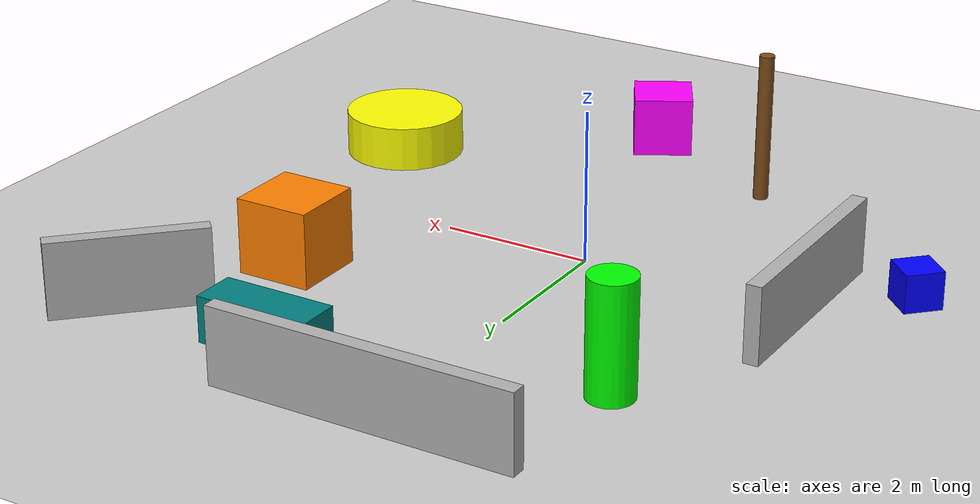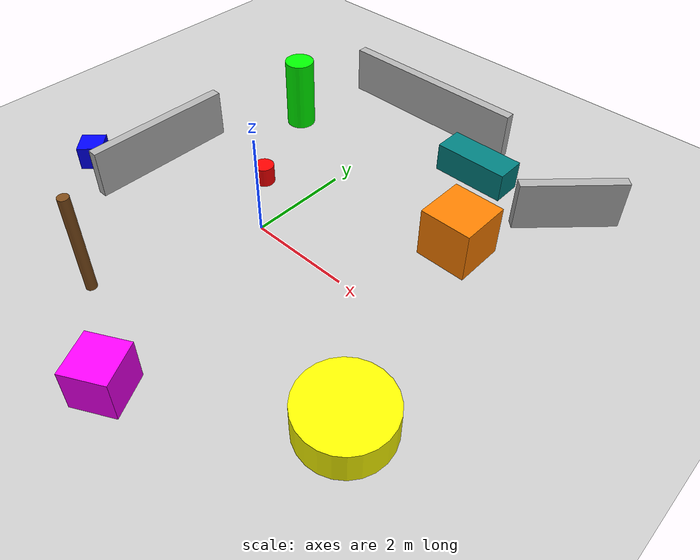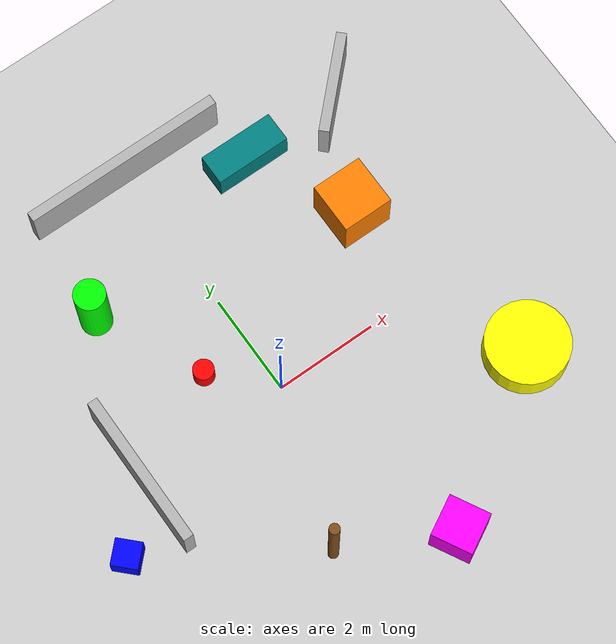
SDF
<?xml version="1.0" ?>
<sdf version="1.5">
  <world name="custom_obstacle_world">

    <physics type="ode">
      <max_step_size>0.001</max_step_size>
      <real_time_factor>1</real_time_factor>
      <real_time_update_rate>1000</real_time_update_rate>
    </physics>

    <!-- Sun -->
    <light type="directional" name="sun">
      <cast_shadows>true</cast_shadows>
      <pose>0 0 10 0 0 0</pose>
      <diffuse>0.8 0.8 0.8 1</diffuse>
      <specular>0.2 0.2 0.2 1</specular>
      <attenuation>
        <range>1000</range>
        <constant>0.9</constant>
        <linear>0.01</linear>
        <quadratic>0.001</quadratic>
      </attenuation>
      <direction>-0.5 0.1 -0.9</direction>
    </light>

    <!-- Ground plane -->
    <model name="ground_plane">
      <static>true</static>
      <link name="link">
        <collision name="collision">
          <geometry>
            <plane>
              <normal>0 0 1</normal>
              <size>100 100</size>
            </plane>
          </geometry>
        </collision>
        <visual name="visual">
          <geometry>
            <plane>
              <normal>0 0 1</normal>
              <size>100 100</size>
            </plane>
          </geometry>
          <material>
            <ambient>0.8 0.8 0.8 1</ambient>
            <diffuse>0.8 0.8 0.8 1</diffuse>
            <specular>0.8 0.8 0.8 1</specular>
          </material>
        </visual>
      </link>
    </model>

    <!-- Box Obstacle 1 -->
    <model name="box_obstacle_1">
      <pose>3 2 0.5 0 0 0</pose>
      <static>true</static>
      <link name="link">
        <collision name="collision">
          <geometry>
            <box>
              <size>1 1 1</size>
            </box>
          </geometry>
        </collision>
        <visual name="visual">
          <geometry>
            <box>
              <size>1 1 1</size>
            </box>
          </geometry>
          <material>
            <ambient>1 0.5 0 1</ambient>
            <diffuse>1 0.5 0 1</diffuse>
          </material>
        </visual>
      </link>
    </model>

    <!-- Cylinder Obstacle 1 -->
    <model name="cylinder_obstacle_1">
      <pose>-2 3 0.75 0 0 0</pose>
      <static>true</static>
      <link name="link">
        <collision name="collision">
          <geometry>
            <cylinder>
              <radius>0.3</radius>
              <length>1.5</length>
            </cylinder>
          </geometry>
        </collision>
        <visual name="visual">
          <geometry>
            <cylinder>
              <radius>0.3</radius>
              <length>1.5</length>
            </cylinder>
          </geometry>
          <material>
            <ambient>0 1 0 1</ambient>
            <diffuse>0 1 0 1</diffuse>
          </material>
        </visual>
      </link>
    </model>

    <!-- Wall 1 -->
    <model name="wall_1">
      <pose>0 5 0.5 0 0 0</pose>
      <static>true</static>
      <link name="link">
        <collision name="collision">
          <geometry>
            <box>
              <size>4 0.2 1</size>
            </box>
          </geometry>
        </collision>
        <visual name="visual">
          <geometry>
            <box>
              <size>4 0.2 1</size>
            </box>
          </geometry>
          <material>
            <ambient>0.7 0.7 0.7 1</ambient>
            <diffuse>0.7 0.7 0.7 1</diffuse>
          </material>
        </visual>
      </link>
    </model>

    <!-- Small Box -->
    <model name="box_obstacle_2">
      <pose>-4 -1 0.25 0 0 0.785</pose>
      <static>true</static>
      <link name="link">
        <collision name="collision">
          <geometry>
            <box>
              <size>0.5 0.5 0.5</size>
            </box>
          </geometry>
        </collision>
        <visual name="visual">
          <geometry>
            <box>
              <size>0.5 0.5 0.5</size>
            </box>
          </geometry>
          <material>
            <ambient>0 0 1 1</ambient>
            <diffuse>0 0 1 1</diffuse>
          </material>
        </visual>
      </link>
    </model>

    <!-- Wide Cylinder -->
    <model name="cylinder_obstacle_2">
      <pose>4 -2 0.3 0 0 0</pose>
      <static>true</static>
      <link name="link">
        <collision name="collision">
          <geometry>
            <cylinder>
              <radius>0.8</radius>
              <length>0.6</length>
            </cylinder>
          </geometry>
        </collision>
        <visual name="visual">
          <geometry>
            <cylinder>
              <radius>0.8</radius>
              <length>0.6</length>
            </cylinder>
          </geometry>
          <material>
            <ambient>1 1 0 1</ambient>
            <diffuse>1 1 0 1</diffuse>
          </material>
        </visual>
      </link>
    </model>

    <!-- Wall 2 -->
    <model name="wall_2">
      <pose>-3 0 0.5 0 0 1.57</pose>
      <static>true</static>
      <link name="link">
        <collision name="collision">
          <geometry>
            <box>
              <size>3 0.2 1</size>
            </box>
          </geometry>
        </collision>
        <visual name="visual">
          <geometry>
            <box>
              <size>3 0.2 1</size>
            </box>
          </geometry>
          <material>
            <ambient>0.7 0.7 0.7 1</ambient>
            <diffuse>0.7 0.7 0.7 1</diffuse>
          </material>
        </visual>
      </link>
    </model>

    <!-- Box Obstacle 3 -->
    <model name="box_obstacle_3">
      <pose>1 -4 0.4 0 0 0.5</pose>
      <static>true</static>
      <link name="link">
        <collision name="collision">
          <geometry>
            <box>
              <size>0.8 0.8 0.8</size>
            </box>
          </geometry>
        </collision>
        <visual name="visual">
          <geometry>
            <box>
              <size>0.8 0.8 0.8</size>
            </box>
          </geometry>
          <material>
            <ambient>1 0 1 1</ambient>
            <diffuse>1 0 1 1</diffuse>
          </material>
        </visual>
      </link>
    </model>

    <!-- Thin Cylinder Pole -->
    <model name="pole_1">
      <pose>-1 -3 1 0 0 0</pose>
      <static>true</static>
      <link name="link">
        <collision name="collision">
          <geometry>
            <cylinder>
              <radius>0.1</radius>
              <length>2</length>
            </cylinder>
          </geometry>
        </collision>
        <visual name="visual">
          <geometry>
            <cylinder>
              <radius>0.1</radius>
              <length>2</length>
            </cylinder>
          </geometry>
          <material>
            <ambient>0.5 0.3 0.1 1</ambient>
            <diffuse>0.5 0.3 0.1 1</diffuse>
          </material>
        </visual>
      </link>
    </model>

    <!-- Rectangular Block -->
    <model name="rect_obstacle_1">
      <pose>2 4 0.3 0 0 0</pose>
      <static>true</static>
      <link name="link">
        <collision name="collision">
          <geometry>
            <box>
              <size>1.5 0.6 0.6</size>
            </box>
          </geometry>
        </collision>
        <visual name="visual">
          <geometry>
            <box>
              <size>1.5 0.6 0.6</size>
            </box>
          </geometry>
          <material>
            <ambient>0 0.5 0.5 1</ambient>
            <diffuse>0 0.5 0.5 1</diffuse>
          </material>
        </visual>
      </link>
    </model>

    <!-- Corner Wall -->
    <model name="corner_wall">
      <pose>4 4 0.5 0 0 0.785</pose>
      <static>true</static>
      <link name="link">
        <collision name="collision">
          <geometry>
            <box>
              <size>2 0.2 1</size>
            </box>
          </geometry>
        </collision>
        <visual name="visual">
          <geometry>
            <box>
              <size>2 0.2 1</size>
            </box>
          </geometry>
          <material>
            <ambient>0.7 0.7 0.7 1</ambient>
            <diffuse>0.7 0.7 0.7 1</diffuse>
          </material>
        </visual>
      </link>
    </model>

    <!-- Small Cylinder -->
    <model name="small_cylinder">
      <pose>-1 1 0.2 0 0 0</pose>
      <static>true</static>
      <link name="link">
        <collision name="collision">
          <geometry>
            <cylinder>
              <radius>0.2</radius>
              <length>0.4</length>
            </cylinder>
          </geometry>
        </collision>
        <visual name="visual">
          <geometry>
            <cylinder>
              <radius>0.2</radius>
              <length>0.4</length>
            </cylinder>
          </geometry>
          <material>
            <ambient>1 0 0 1</ambient>
            <diffuse>1 0 0 1</diffuse>
          </material>
        </visual>
      </link>
    </model>

  </world>
</sdf>
